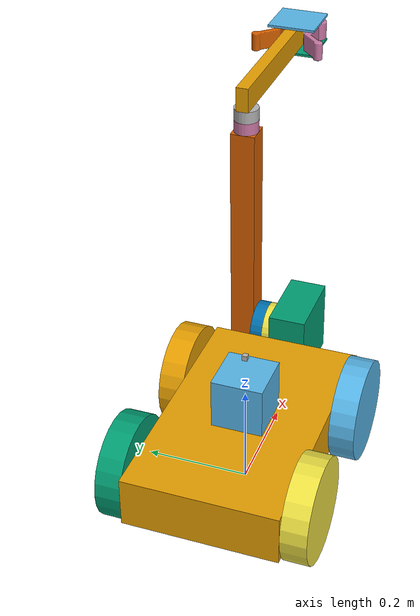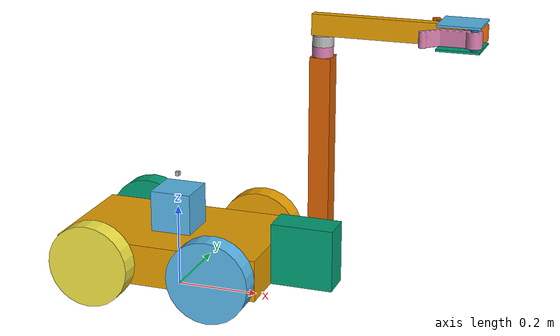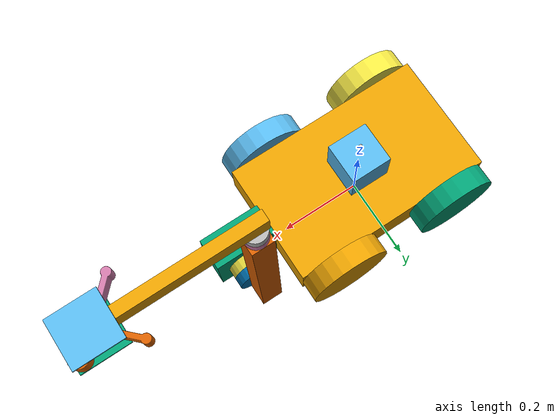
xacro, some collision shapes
<?xml version="1.0"?>
<robot xmlns:xacro="http://www.ros.org/wiki/xacro" name="kinectbot">

  <!--central box properties-->
  <xacro:property name="depthBox" value=".5" />
  <xacro:property name="widthBox" value=".3" />
  <xacro:property name="heightBox" value=".1" />
  <xacro:property name="densityBox" value="1000" />
  <!--post to elevate sensor properties-->
  <xacro:property name="depthPost" value=".1" />
  <xacro:property name="widthPost" value=".1" />
  <xacro:property name="heightPost" value=".1" />
  <xacro:property name="densityPost" value="100" />
  <!--wheel properties-->
  <xacro:property name="radiusCylinder" value=".1" />
  <xacro:property name="lengthCylinder" value=".05" />
  <xacro:property name="densityCylinder" value="100" />

  <!--box body-->
  <link name="base_link">
    <visual>
      <geometry>
        <box size="${depthBox} ${widthBox} ${heightBox}"/>
      </geometry>
      <origin rpy="0 0 0" xyz="0 0 ${heightBox}"/>
    </visual>

    <collision>
      <geometry>
        <box size="${depthBox} ${widthBox} ${heightBox}"/>
      </geometry>
      <origin rpy="0 0 0" xyz="0 0 ${heightBox}"/>
    </collision>

    <inertial>
      <mass value="${depthBox*widthBox*heightBox*densityBox}"/>
      <inertia
        ixx="${(depthBox*widthBox*heightBox*densityBox)/12*((heightBox*heightBox)+(depthBox*depthBox))}"
        ixy="0"
        ixz="0"
        iyy="${(depthBox*widthBox*heightBox*densityBox)/12*((widthBox*widthBox)+(depthBox*depthBox))}"
        iyz="0"
        izz="${(depthBox*widthBox*heightBox*densityBox)/12*((widthBox*widthBox)+(heightBox*heightBox))}"/>
    </inertial>
  </link>

  <!--Post to elevate sensor-->
    <link name="post">
      <visual>
        <geometry>
          <box size="${depthPost} ${widthPost} ${heightPost}"/>
        </geometry>
        <origin rpy="0 0 0" xyz="0 0 0"/>
      </visual>

      <collision>
        <geometry>
          <box size="${depthPost} ${widthPost} ${heightPost}"/>
        </geometry>
        <origin rpy="0 0 0" xyz="0 0 ${heightPost}"/>
      </collision>

      <inertial>
        <mass value="${depthPost*widthPost*heightPost*densityPost}"/>
        <inertia
          ixx="${(depthPost*widthPost*heightPost*densityPost)/12*((heightPost*heightPost)+(depthPost*depthPost))}"
          ixy="0"
          ixz="0"
          iyy="${(depthPost*widthPost*heightPost*densityPost)/12*((widthPost*widthPost)+(depthPost*depthPost))}"
          iyz="0"
          izz="${(depthPost*widthPost*heightPost*densityPost)/12*((widthPost*widthPost)+(heightPost*heightPost))}"/>
      </inertial>
    </link>

    <!--Xacro macro types for easily creating models of cylinders and rectangular prisms-->
    <xacro:macro name="cylinder" params="name orientation radius depth density">
      <link name="${name}">
        <visual>
          <geometry>
            <cylinder length="${depth}" radius="${radius}"/>
          </geometry>
          <origin rpy="${orientation} 0 0" xyz="0 0 0"/>
        </visual>

        <collision>
          <geometry>
            <cylinder length="${depth}" radius="${radius}"/>
          </geometry>
          <origin rpy="${orientation} 0 0" xyz="0 0 0"/>
        </collision>

        <inertial>
          <mass value="${(radius*radius*density)*3.1415}"/>
          <inertia
            ixx="${(((radius*radius*density)*3.1415)/12)*(3*(radius*radius)+(depth*depth))}"
            ixy="0"
            ixz="0"
            iyy="${(((radius*radius*density)*3.1415)/12)*(3*(radius*radius)+(depth*depth))}"
            iyz="0"
            izz="${(((radius*radius*density)*3.1415)/2)*(radius*radius)}"/>
        </inertial>
      </link>
    </xacro:macro>

    <xacro:macro name="box" params="name depth width height density">
      <link name="${name}">
        <visual>
          <geometry>
            <box size="${depth} ${width} ${height}"/>
          </geometry>
          <origin rpy="0 0 0" xyz="0 0 0"/>
        </visual>

        <collision>
          <geometry>
            <box size="${depth} ${width} ${height}"/>
          </geometry>
          <origin rpy="0 0 0" xyz="0 0 0"/>
        </collision>

        <inertial>
          <mass value="${depth*width*height*density}"/>
          <inertia
            ixx="${(depth*width*height*density)/12*((height*height)+(depth*depth))}"
            ixy="0"
            ixz="0"
            iyy="${(depth*width*height*density)/12*((width*width)+(depth*depth))}"
            iyz="0"
            izz="${(depth*width*height*density)/12*((width*width)+(height*height))}"/>
        </inertial>
      </link>
    </xacro:macro>

    <!--control plugin for joints-->
    <gazebo>
      <plugin name="gazebo_ros_control" filename="libgazebo_ros_control.so">
        <robotNamespace>/armV1</robotNamespace>
      </plugin>
    </gazebo>

      <!--links-->
      <xacro:property name="c11Depth" value=".15" />
      <xacro:property name="c11Width" value=".075" />
      <xacro:property name="c11Height" value=".15" />
      <xacro:box name="c11" depth="${c11Depth}" width="${c11Width}" height="${c11Height}" density="10"/>

      <xacro:property name="c12Radius" value=".05" />
      <xacro:property name="c12Depth" value=".025" />
      <xacro:cylinder name="c12" orientation="1.5707" radius="${c12Radius}" depth="${c12Depth}" density="10"/>

      <xacro:property name="c13Radius" value=".05" />
      <xacro:property name="c13Depth" value=".025" />
      <xacro:cylinder name="c13" orientation="1.5707" radius="${c13Radius}" depth="${c13Depth}" density="10"/>

      <xacro:property name="a1Depth" value=".05" />
      <xacro:property name="a1Width" value=".05" />
      <xacro:property name="a1Height" value=".5" />
      <xacro:box name="a1" depth="${a1Depth}" width="${a1Width}" height="${a1Height}" density="10"/>

      <xacro:property name="c21Radius" value=".025" />
      <xacro:property name="c21Depth" value=".025" />
      <xacro:cylinder name="c21" orientation="0" radius="${c21Radius}" depth="${c21Depth}" density="10"/>

      <xacro:property name="c22Radius" value=".025" />
      <xacro:property name="c22Depth" value=".025" />
      <xacro:cylinder name="c22" orientation="0" radius="${c22Radius}" depth="${c22Depth}" density="10"/>

      <xacro:property name="a2Depth" value=".35" />
      <xacro:property name="a2Width" value=".025" />
      <xacro:property name="a2Height" value=".05" />
      <xacro:box name="a2" depth="${a2Depth}" width="${a2Width}" height="${a2Height}" density="10"/>

      <xacro:property name="c31Depth" value=".1" />
      <xacro:property name="c31Width" value=".1" />
      <xacro:property name="c31Height" value=".005" />
      <xacro:box name="c31" depth="${c31Depth}" width="${c31Width}" height="${c31Height}" density="10"/>

      <xacro:property name="c32Depth" value=".1" />
      <xacro:property name="c32Width" value=".1" />
      <xacro:property name="c32Height" value=".005" />
      <xacro:box name="c32" depth="${c32Depth}" width="${c32Width}" height="${c32Height}" density="10"/>

      <xacro:property name="c33Radius" value=".009" />
      <xacro:property name="c33Depth" value=".05" />
      <xacro:cylinder name="c33" orientation="0" radius="${c33Radius}" depth="${c33Depth}" density="10"/>

      <xacro:property name="c34Radius" value=".009" />
      <xacro:property name="c34Depth" value=".05" />
      <xacro:cylinder name="c34" orientation="0" radius="${c34Radius}" depth="${c34Depth}" density="10"/>

      <link name="claw1">
        <visual>
          <geometry>
            <mesh filename="package://learning_robot_control/meshes/gripperV2.dae" scale="0.0075 0.0075 0.0075"/>
          </geometry>
          <origin rpy="1.5707 0 0" xyz="0 0 0"/>
        </visual>

        <collision>
          <geometry>
            <mesh filename="package://learning_robot_control/meshes/gripperV2.dae" scale="0.0075 0.0075 0.0075"/>
          </geometry>
          <origin rpy="1.5707 0 0" xyz="0 0 0"/>
        </collision>

        <inertial>
          <mass value="1"/>
          <inertia
            ixx=".01"
            ixy="0"
            ixz="0"
            iyy=".01"
            iyz="0"
            izz=".01"/>
        </inertial>
      </link>

      <link name="claw2">
        <visual>
          <geometry>
            <mesh filename="package://learning_robot_control/meshes/gripperV2.dae" scale="0.0075 0.0075 0.0075"/>
          </geometry>
          <origin rpy="1.5707 3.1415 3.1415" xyz="0 0 0"/>
        </visual>

        <collision>
          <geometry>
            <mesh filename="package://learning_robot_control/meshes/gripperV2.dae" scale="0.0075 0.0075 0.0075"/>
          </geometry>
          <origin rpy="1.5707 3.1415 3.1415" xyz="0 0 0"/>
        </collision>

        <inertial>
          <mass value="1"/>
          <inertia
            ixx=".01"
            ixy="0"
            ixz="0"
            iyy=".01"
            iyz="0"
            izz=".01"/>
        </inertial>
      </link>

    <!-- Hokuyo Laser -->
      <link name="hokuyo_link">
        <collision>
          <origin xyz="0 0 0" rpy="0 0 0"/>
          <geometry>
        <box size="0.01 0.01 0.01"/>
          </geometry>
        </collision>

        <visual>
          <origin xyz="0 0 0" rpy="0 0 0"/>
          <geometry>
            <mesh filename="package://learning_robot_control/meshes/hokuyo.dae"/>
          </geometry>
        </visual>

        <inertial>
          <mass value="1e-5" />
          <origin xyz="0 0 0" rpy="0 0 0"/>
          <inertia ixx="1e-6" ixy="0" ixz="0" iyy="1e-6" iyz="0" izz="1e-6" />
        </inertial>
      </link>

<gazebo reference="hokuyo_link">
    <sensor type="ray" name="head_hokuyo_sensor">
      <pose>0 0 0 0 0 0</pose>
      <visualize>false</visualize>
      <update_rate>40</update_rate>
      <ray>
        <scan>
          <horizontal>
            <samples>720</samples>
            <resolution>1</resolution>
            <min_angle>-1.570796</min_angle>
            <max_angle>1.570796</max_angle>
          </horizontal>
        </scan>
        <range>
          <min>0.10</min>
          <max>30.0</max>
          <resolution>0.01</resolution>
        </range>
        <noise>
          <type>gaussian</type>
          <mean>0.0</mean>
          <stddev>0.01</stddev>
        </noise>
      </ray>
      <plugin name="gazebo_ros_head_hokuyo_controller" filename="libgazebo_ros_laser.so">
        <topicName>/hokuyobot/laser/scan</topicName>
        <frameName>base_link</frameName>
      </plugin>
    </sensor>
  </gazebo>

  <!--algorithm for creating wheels and joints-->
  <xacro:macro name="wheel" params="prefix x y">
      <link name="${prefix}Wheel">
        <visual>
          <geometry>
          	<cylinder length="${lengthCylinder}" radius="${radiusCylinder}"/>
          </geometry>
          <origin rpy="1.5707 0 0" xyz="0 0 0"/>
        </visual>

        <collision>
          <geometry>
            <cylinder length="${lengthCylinder}" radius="${radiusCylinder}"/>
          </geometry>
          <origin rpy="1.5707 0 0" xyz="0 0 0"/>
        </collision>

     <inertial>
          <mass value="${(radiusCylinder*radiusCylinder)*3.1415}"/>
          <inertia
            ixx="${(((radiusCylinder*radiusCylinder)*3.1415)/12)*(3*(radiusCylinder*radiusCylinder)+(lengthCylinder*lengthCylinder))}"
            ixy="0"
            ixz="0"
            iyy="${(((radiusCylinder*radiusCylinder)*3.1415)/12)*(3*(radiusCylinder*radiusCylinder)+(lengthCylinder*lengthCylinder))}"
            iyz="0"
            izz="${(((radiusCylinder*radiusCylinder)*3.1415)/2)*(radiusCylinder*radiusCylinder)}"/>
        </inertial>
      </link>

      <joint name="${prefix}WheelJoint" type="continuous">
        <parent link="base_link"/>
        <child link="${prefix}Wheel"/>
        <axis xyz="0 ${((widthBox/2)+(lengthCylinder/2))} 0"/>
        <origin xyz="${((depthBox/2)-radiusCylinder)*x} ${((widthBox/2)+(lengthCylinder/2))*y} ${heightBox}"/>
      </joint>
  </xacro:macro>
  <!--Skid Steering Drive-->
  <gazebo>
    <plugin name="skid_steer_drive_controller" filename="libgazebo_ros_skid_steer_drive.so">
      <updateRate>100.0</updateRate>
      <robotNamespace>/hokuyobot</robotNamespace>
      <leftFrontJoint>leftFrontWheelJoint</leftFrontJoint>
      <rightFrontJoint>rightFrontWheelJoint</rightFrontJoint>
      <leftRearJoint>leftBackWheelJoint</leftRearJoint>
      <rightRearJoint>rightBackWheelJoint</rightRearJoint>
      <wheelSeparation>${(widthBox/2) + (lengthCylinder/2)}</wheelSeparation>
      <wheelDiameter>${radiusCylinder*2}</wheelDiameter>
      <robotBaseFrame>base_link</robotBaseFrame>
      <torque>20</torque>
      <topicName>cmd_vel</topicName>
      <broadcastTF>true</broadcastTF>
    </plugin>
  </gazebo>
  <!--Create wheels and joint to the main body using above algorithm-->
  <xacro:wheel prefix="rightFront" x="1" y="1"/>
  <xacro:wheel prefix="leftFront" x="1" y="-1"/>
  <xacro:wheel prefix="rightBack" x="-1" y="1"/>
  <xacro:wheel prefix="leftBack" x="-1" y="-1"/>

  <joint name="postToBody" type="fixed">
    <parent link="base_link"/>
    <child link="post"/>
    <origin xyz="0 0 ${(heightBox/2)+heightBox+(heightPost/2)}"/>
  </joint>

  <joint name="sensorToBody" type="fixed">
     <axis xyz="0 1 0"  rpy="0 0 0"/>
    <parent link="post"/>
    <child link="hokuyo_link"/>
    <origin xyz="0 0 .085"/>
  </joint>

  <joint name="c11ToBody" type="fixed">
    <parent link="base_link"/>
    <child link="c11"/>
    <origin xyz="${depthBox/2+c11Depth/2} 0 ${c11Height/2+heightBox/2}"/>
  </joint>

  <joint name="c12Toc11Joint" type="fixed">
    <parent link="c11"/>
    <child link="c12"/>
    <origin xyz="0 ${c12Depth/2+c11Width/2} 0"/>
  </joint>

  <joint name="c13Toc12Joint" type="continuous">
    <parent link="c12"/>
    <child link="c13"/>
    <axis xyz="0 ${c13Depth} 0"/>
    <origin xyz="0 ${c13Depth} 0"/>
  </joint>

  <joint name="a1Toc13Joint" type="fixed">
    <parent link="c13"/>
    <child link="a1"/>
    <origin xyz="0 ${c13Depth/2+a1Width/2} ${(a1Height/2)-c13Radius}"/>
  </joint>

  <joint name="c21toa1Joint" type="fixed">
    <parent link="a1"/>
    <child link="c21"/>
    <origin xyz="0 0 ${c21Depth/2+a1Height/2}"/>
  </joint>

  <joint name="c22Toc21Joint" type="continuous">
    <parent link="c21"/>
    <child link="c22"/>
    <axis xyz="0 0 ${c22Depth}"/>
    <origin xyz="0 0 ${c22Depth}"/>
  </joint>

  <joint name="a2Toc22Joint" type="fixed">
    <parent link="c22"/>
    <child link="a2"/>
    <origin xyz="${(a2Depth/2)-(c22Radius)} 0 ${(a2Height/2)+(c22Depth/2)}"/>
  </joint>

  <joint name="c31Toa2Joint" type="fixed">
    <parent link="a2"/>
    <child link="c31"/>
    <origin xyz="${a2Depth/2} 0 ${a2Height/2 + c31Height/2}"/>
  </joint>

  <joint name="c32Toa2Joint" type="fixed">
    <parent link="a2"/>
    <child link="c32"/>
    <origin xyz="${a2Depth/2} 0 ${(a2Height/2 + c32Height/2)*-1}"/>
  </joint>

  <joint name="c33Toc32Joint" type="fixed">
    <parent link="c32"/>
    <child link="c33"/>
    <origin xyz="${c32Width/3} ${c32Depth/3} ${c32Height/2 + c33Depth/2}"/>
  </joint>

  <joint name="c34Toc32Joint" type="fixed">
    <parent link="c32"/>
    <child link="c34"/>
    <origin xyz="${c32Width/3} ${c32Depth/-3} ${c32Height/2 + c34Depth/2}"/>
  </joint>

  <joint name="claw1Toc33Joint" type="continuous">
    <parent link="c33"/>
    <child link="claw1"/>
    <axis xyz="0 0 ${(c33Depth/-2) + .0075}"/>
    <origin xyz="0 0 ${(c33Depth/-2) + .0075}"/>
  </joint>

  <joint name="claw2Toc34Joint" type="continuous">
    <parent link="c34"/>
    <child link="claw2"/>
    <axis xyz="0 0 ${(c34Depth/2) - .0075}"/>
    <origin xyz="0 0 ${(c34Depth/2) - .0075}"/>
  </joint>

  <!--Actuators/transmissions for moving joints-->
  <transmission name="c13transmission">
    <type>transmission_interface/SimpleTransmission</type>
      <joint name="c13Toc12Joint">
      <hardwareInterface>hardware_interface/VelocityJointInterface</hardwareInterface>
      </joint>
  <actuator name="c13Motor">
    <hardwareInterface>hardware_interface/VelocityJointInterface</hardwareInterface>
    <mechanicalReduction>1</mechanicalReduction>
  </actuator>
</transmission>

<transmission name="c22transmission">
  <type>transmission_interface/SimpleTransmission</type>
    <joint name="c22Toc21Joint">
    <hardwareInterface>hardware_interface/VelocityJointInterface</hardwareInterface>
    </joint>
<actuator name="c22Motor">
  <hardwareInterface>hardware_interface/VelocityJointInterface</hardwareInterface>
  <mechanicalReduction>1</mechanicalReduction>
</actuator>
</transmission>

</robot>
